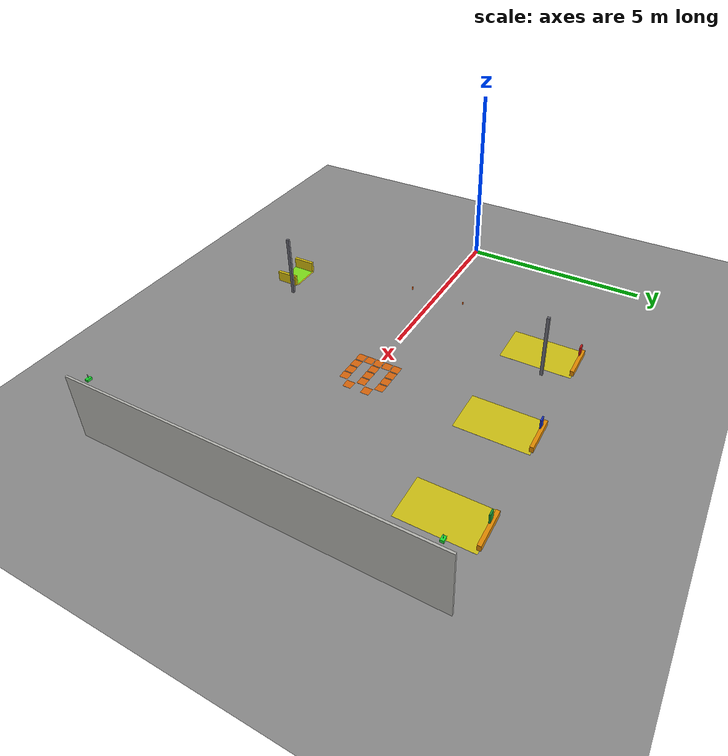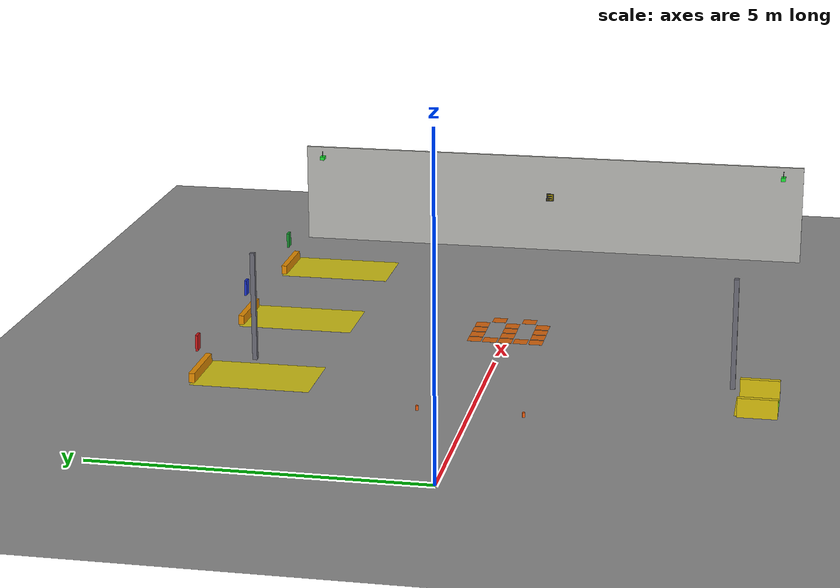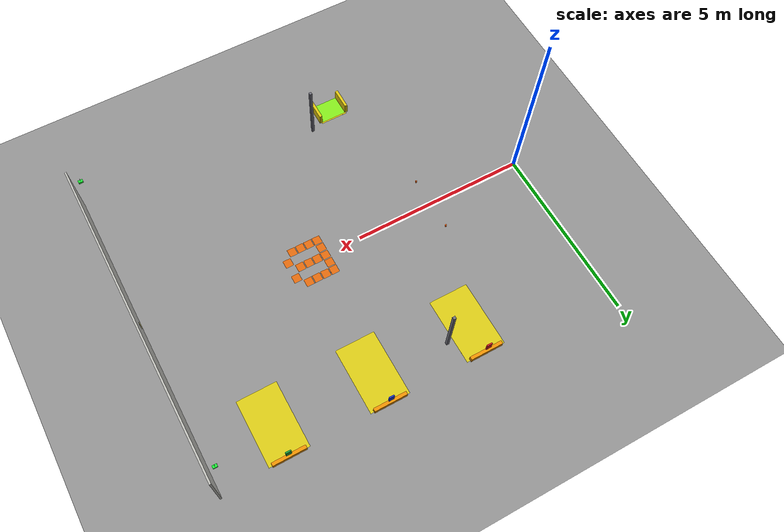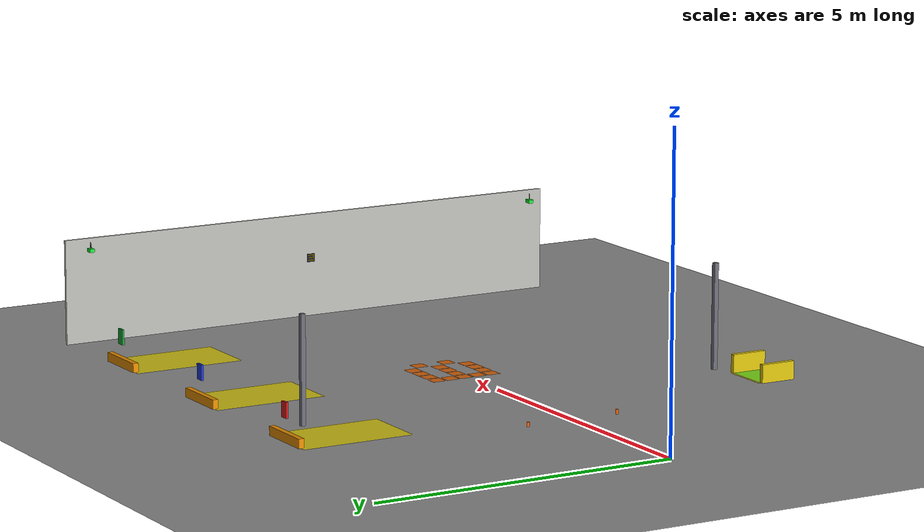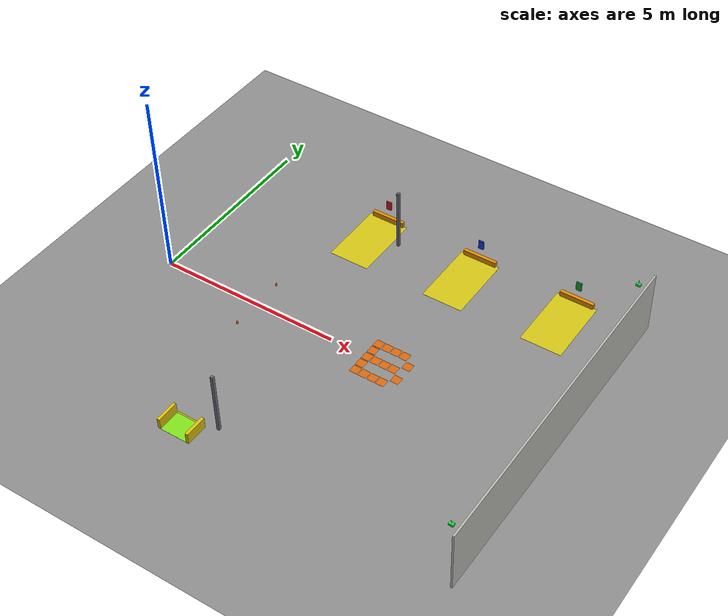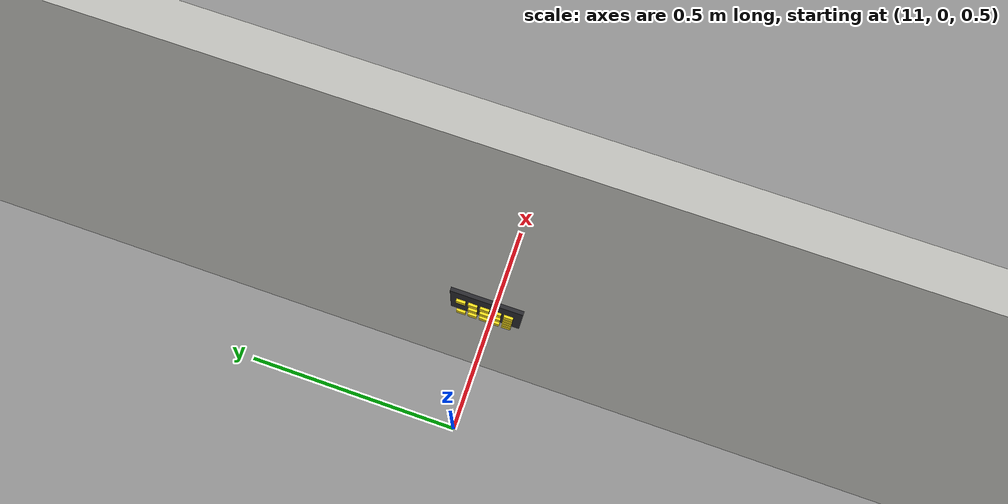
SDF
<sdf version="1.9">
 <world name="industrial_warehouse_large">
  <model name="ground_plane">
   <static>true</static>
   <pose>-0.46875 0 0 0 0 0</pose>
   <link name="link">
    <collision name="col">
     <geometry><plane><normal>0 0 1</normal><size>50 50</size></plane></geometry>
     <surface><friction><ode><mu>1.8</mu><mu2>1.8</mu2></ode></friction></surface>
    </collision>
    <visual name="vis">
     <geometry><plane><normal>0 0 1</normal><size>24.1875 9.5</size></plane></geometry>
     <material><ambient>0.55 0.55 0.55 1</ambient><diffuse>0.55 0.55 0.55 1</diffuse></material>
    </visual>
   </link>
  </model>
  <model name="wall_east">
   <static>true</static>
   <pose>11.25 0 0.875 0 0 0</pose>
   <link name="link">
    <collision name="col"><geometry><box><size>0.05 9.1 1.75</size></box></geometry></collision>
    <visual name="vis">
     <geometry><box><size>0.05 9.1 1.75</size></box></geometry>
     <material><ambient>0.72 0.72 0.70 1</ambient><diffuse>0.72 0.72 0.70 1</diffuse></material>
    </visual>
   </link>
  </model>
  <model name="pillar_9">
   <static>true</static>
   <pose>4.5 3.75 0.875 0 0 0</pose>
   <link name="link">
    <collision name="col"><geometry><box><size>0.075 0.075 1.75</size></box></geometry></collision>
    <visual name="vis">
     <geometry><box><size>0.075 0.075 1.75</size></box></geometry>
     <material><ambient>0.42 0.42 0.46 1</ambient><diffuse>0.42 0.42 0.46 1</diffuse></material>
    </visual>
   </link>
  </model>
  <model name="pillar_10">
   <static>true</static>
   <pose>4.5 -3.75 0.875 0 0 0</pose>
   <link name="link">
    <collision name="col"><geometry><box><size>0.075 0.075 1.75</size></box></geometry></collision>
    <visual name="vis">
     <geometry><box><size>0.075 0.075 1.75</size></box></geometry>
     <material><ambient>0.42 0.42 0.46 1</ambient><diffuse>0.42 0.42 0.46 1</diffuse></material>
    </visual>
   </link>
  </model>
  <model name="dock_bumper_1">
   <static>true</static>
   <pose>3.75 4.425 0.075 0 0 0</pose>
   <link name="link">
    <collision name="col"><geometry><box><size>0.9375 0.09375 0.15</size></box></geometry></collision>
    <visual name="vis">
     <geometry><box><size>0.9375 0.09375 0.15</size></box></geometry>
     <material><ambient>0.9 0.55 0.0 1</ambient><diffuse>0.9 0.55 0.0 1</diffuse></material>
    </visual>
   </link>
  </model>
  <model name="dock_bumper_2">
   <static>true</static>
   <pose>6.5625 4.425 0.075 0 0 0</pose>
   <link name="link">
    <collision name="col"><geometry><box><size>0.9375 0.09375 0.15</size></box></geometry></collision>
    <visual name="vis">
     <geometry><box><size>0.9375 0.09375 0.15</size></box></geometry>
     <material><ambient>0.9 0.55 0.0 1</ambient><diffuse>0.9 0.55 0.0 1</diffuse></material>
    </visual>
   </link>
  </model>
  <model name="dock_bumper_3">
   <static>true</static>
   <pose>9.375 4.425 0.075 0 0 0</pose>
   <link name="link">
    <collision name="col"><geometry><box><size>0.9375 0.09375 0.15</size></box></geometry></collision>
    <visual name="vis">
     <geometry><box><size>0.9375 0.09375 0.15</size></box></geometry>
     <material><ambient>0.9 0.55 0.0 1</ambient><diffuse>0.9 0.55 0.0 1</diffuse></material>
    </visual>
   </link>
  </model>
  <model name="dock_mark_1">
   <static>true</static>
   <pose>3.75 3.5 0.00025 0 0 0</pose>
   <link name="link">
    <visual name="vis">
     <geometry><box><size>1.125 1.875 0.0005</size></box></geometry>
     <material><ambient>0.82 0.76 0.08 1</ambient><diffuse>0.82 0.76 0.08 1</diffuse></material>
    </visual>
   </link>
  </model>
  <model name="dock_mark_2">
   <static>true</static>
   <pose>6.5625 3.5 0.00025 0 0 0</pose>
   <link name="link">
    <visual name="vis">
     <geometry><box><size>1.125 1.875 0.0005</size></box></geometry>
     <material><ambient>0.82 0.76 0.08 1</ambient><diffuse>0.82 0.76 0.08 1</diffuse></material>
    </visual>
   </link>
  </model>
  <model name="dock_mark_3">
   <static>true</static>
   <pose>9.375 3.5 0.00025 0 0 0</pose>
   <link name="link">
    <visual name="vis">
     <geometry><box><size>1.125 1.875 0.0005</size></box></geometry>
     <material><ambient>0.82 0.76 0.08 1</ambient><diffuse>0.82 0.76 0.08 1</diffuse></material>
    </visual>
   </link>
  </model>
  <model name="chrg_wall_w">
   <static>true</static>
   <pose>3.34 -4.175 0.15 0 0 0</pose>
   <link name="link">
    <collision name="col"><geometry><box><size>0.08 0.6 0.3</size></box></geometry></collision>
    <visual name="vis">
     <geometry><box><size>0.08 0.6 0.3</size></box></geometry>
     <material><ambient>0.85 0.75 0.05 1</ambient><diffuse>0.85 0.75 0.05 1</diffuse></material>
    </visual>
   </link>
  </model>
  <model name="chrg_wall_e">
   <static>true</static>
   <pose>4.16 -4.175 0.15 0 0 0</pose>
   <link name="link">
    <collision name="col"><geometry><box><size>0.08 0.6 0.3</size></box></geometry></collision>
    <visual name="vis">
     <geometry><box><size>0.08 0.6 0.3</size></box></geometry>
     <material><ambient>0.85 0.75 0.05 1</ambient><diffuse>0.85 0.75 0.05 1</diffuse></material>
    </visual>
   </link>
  </model>
  <model name="chrg_pad">
   <static>true</static>
   <pose>3.75 -4.175 0.00025 0 0 0</pose>
   <link name="link">
    <visual name="vis">
     <geometry><box><size>0.8 0.6 0.0005</size></box></geometry>
     <material><ambient>0.5 0.88 0.1 1</ambient><diffuse>0.5 0.88 0.1 1</diffuse></material>
    </visual>
   </link>
  </model>
  <model name="chrg_entry_mark">
   <static>true</static>
   <pose>3.75 -3.855 0.00025 0 0 0</pose>
   <link name="link">
    <visual name="vis">
     <geometry><box><size>0.8 0.04 0.0005</size></box></geometry>
     <material><ambient>0.85 0.75 0.05 1</ambient><diffuse>0.85 0.75 0.05 1</diffuse></material>
    </visual>
   </link>
  </model>
  <model name="sign_dock_1">
   <static>true</static>
   <pose>3.75 4.45 0.5 0 0 0</pose>
   <link name="link">
    <collision name="col"><geometry><box><size>0.15 0.0375 0.25</size></box></geometry></collision>
    <visual name="vis">
     <geometry><box><size>0.15 0.0375 0.25</size></box></geometry>
     <material><ambient>0.8 0.1 0.1 1</ambient><diffuse>0.8 0.1 0.1 1</diffuse></material>
    </visual>
   </link>
  </model>
  <model name="sign_dock_2">
   <static>true</static>
   <pose>6.5625 4.45 0.5 0 0 0</pose>
   <link name="link">
    <collision name="col"><geometry><box><size>0.15 0.0375 0.25</size></box></geometry></collision>
    <visual name="vis">
     <geometry><box><size>0.15 0.0375 0.25</size></box></geometry>
     <material><ambient>0.1 0.2 0.8 1</ambient><diffuse>0.1 0.2 0.8 1</diffuse></material>
    </visual>
   </link>
  </model>
  <model name="sign_dock_3">
   <static>true</static>
   <pose>9.375 4.45 0.5 0 0 0</pose>
   <link name="link">
    <collision name="col"><geometry><box><size>0.15 0.0375 0.25</size></box></geometry></collision>
    <visual name="vis">
     <geometry><box><size>0.15 0.0375 0.25</size></box></geometry>
     <material><ambient>0.1 0.6 0.2 1</ambient><diffuse>0.1 0.6 0.2 1</diffuse></material>
    </visual>
   </link>
  </model>
  <model name="compass_east_plate">
   <static>true</static>
   <pose>11.2 0 1 0 0 0</pose>
   <link name="link">
    <collision name="col"><geometry><box><size>0.0075 0.1375 0.1375</size></box></geometry></collision>
    <visual name="vis">
     <geometry><box><size>0.0075 0.1375 0.1375</size></box></geometry>
     <material><ambient>0.15 0.15 0.17 1</ambient><diffuse>0.15 0.15 0.17 1</diffuse></material>
    </visual>
   </link>
  </model>
  <model name="compass_east_px1">
   <static>true</static>
   <pose>11.1875 -0.045 1.045 0 0 0</pose>
   <link name="link">
    <visual name="vis">
     <geometry><box><size>0.005 0.0175 0.0175</size></box></geometry>
     <material><ambient>0.95 0.85 0.1 1</ambient><diffuse>0.95 0.85 0.1 1</diffuse></material>
    </visual>
   </link>
  </model>
  <model name="compass_east_px2">
   <static>true</static>
   <pose>11.1875 -0.0225 1.045 0 0 0</pose>
   <link name="link">
    <visual name="vis">
     <geometry><box><size>0.005 0.0175 0.0175</size></box></geometry>
     <material><ambient>0.95 0.85 0.1 1</ambient><diffuse>0.95 0.85 0.1 1</diffuse></material>
    </visual>
   </link>
  </model>
  <model name="compass_east_px3">
   <static>true</static>
   <pose>11.1875 0 1.045 0 0 0</pose>
   <link name="link">
    <visual name="vis">
     <geometry><box><size>0.005 0.0175 0.0175</size></box></geometry>
     <material><ambient>0.95 0.85 0.1 1</ambient><diffuse>0.95 0.85 0.1 1</diffuse></material>
    </visual>
   </link>
  </model>
  <model name="compass_east_px4">
   <static>true</static>
   <pose>11.1875 0.0225 1.045 0 0 0</pose>
   <link name="link">
    <visual name="vis">
     <geometry><box><size>0.005 0.0175 0.0175</size></box></geometry>
     <material><ambient>0.95 0.85 0.1 1</ambient><diffuse>0.95 0.85 0.1 1</diffuse></material>
    </visual>
   </link>
  </model>
  <model name="compass_east_px5">
   <static>true</static>
   <pose>11.1875 0.045 1.045 0 0 0</pose>
   <link name="link">
    <visual name="vis">
     <geometry><box><size>0.005 0.0175 0.0175</size></box></geometry>
     <material><ambient>0.95 0.85 0.1 1</ambient><diffuse>0.95 0.85 0.1 1</diffuse></material>
    </visual>
   </link>
  </model>
  <model name="compass_east_px6">
   <static>true</static>
   <pose>11.1875 -0.045 1.0225 0 0 0</pose>
   <link name="link">
    <visual name="vis">
     <geometry><box><size>0.005 0.0175 0.0175</size></box></geometry>
     <material><ambient>0.95 0.85 0.1 1</ambient><diffuse>0.95 0.85 0.1 1</diffuse></material>
    </visual>
   </link>
  </model>
  <model name="compass_east_px7">
   <static>true</static>
   <pose>11.1875 -0.045 1 0 0 0</pose>
   <link name="link">
    <visual name="vis">
     <geometry><box><size>0.005 0.0175 0.0175</size></box></geometry>
     <material><ambient>0.95 0.85 0.1 1</ambient><diffuse>0.95 0.85 0.1 1</diffuse></material>
    </visual>
   </link>
  </model>
  <model name="compass_east_px8">
   <static>true</static>
   <pose>11.1875 -0.0225 1 0 0 0</pose>
   <link name="link">
    <visual name="vis">
     <geometry><box><size>0.005 0.0175 0.0175</size></box></geometry>
     <material><ambient>0.95 0.85 0.1 1</ambient><diffuse>0.95 0.85 0.1 1</diffuse></material>
    </visual>
   </link>
  </model>
  <model name="compass_east_px9">
   <static>true</static>
   <pose>11.1875 0 1 0 0 0</pose>
   <link name="link">
    <visual name="vis">
     <geometry><box><size>0.005 0.0175 0.0175</size></box></geometry>
     <material><ambient>0.95 0.85 0.1 1</ambient><diffuse>0.95 0.85 0.1 1</diffuse></material>
    </visual>
   </link>
  </model>
  <model name="compass_east_px10">
   <static>true</static>
   <pose>11.1875 0.0225 1 0 0 0</pose>
   <link name="link">
    <visual name="vis">
     <geometry><box><size>0.005 0.0175 0.0175</size></box></geometry>
     <material><ambient>0.95 0.85 0.1 1</ambient><diffuse>0.95 0.85 0.1 1</diffuse></material>
    </visual>
   </link>
  </model>
  <model name="compass_east_px11">
   <static>true</static>
   <pose>11.1875 -0.045 0.9775 0 0 0</pose>
   <link name="link">
    <visual name="vis">
     <geometry><box><size>0.005 0.0175 0.0175</size></box></geometry>
     <material><ambient>0.95 0.85 0.1 1</ambient><diffuse>0.95 0.85 0.1 1</diffuse></material>
    </visual>
   </link>
  </model>
  <model name="compass_east_px12">
   <static>true</static>
   <pose>11.1875 -0.045 0.955 0 0 0</pose>
   <link name="link">
    <visual name="vis">
     <geometry><box><size>0.005 0.0175 0.0175</size></box></geometry>
     <material><ambient>0.95 0.85 0.1 1</ambient><diffuse>0.95 0.85 0.1 1</diffuse></material>
    </visual>
   </link>
  </model>
  <model name="compass_east_px13">
   <static>true</static>
   <pose>11.1875 -0.0225 0.955 0 0 0</pose>
   <link name="link">
    <visual name="vis">
     <geometry><box><size>0.005 0.0175 0.0175</size></box></geometry>
     <material><ambient>0.95 0.85 0.1 1</ambient><diffuse>0.95 0.85 0.1 1</diffuse></material>
    </visual>
   </link>
  </model>
  <model name="compass_east_px14">
   <static>true</static>
   <pose>11.1875 0 0.955 0 0 0</pose>
   <link name="link">
    <visual name="vis">
     <geometry><box><size>0.005 0.0175 0.0175</size></box></geometry>
     <material><ambient>0.95 0.85 0.1 1</ambient><diffuse>0.95 0.85 0.1 1</diffuse></material>
    </visual>
   </link>
  </model>
  <model name="compass_east_px15">
   <static>true</static>
   <pose>11.1875 0.0225 0.955 0 0 0</pose>
   <link name="link">
    <visual name="vis">
     <geometry><box><size>0.005 0.0175 0.0175</size></box></geometry>
     <material><ambient>0.95 0.85 0.1 1</ambient><diffuse>0.95 0.85 0.1 1</diffuse></material>
    </visual>
   </link>
  </model>
  <model name="compass_east_px16">
   <static>true</static>
   <pose>11.1875 0.045 0.955 0 0 0</pose>
   <link name="link">
    <visual name="vis">
     <geometry><box><size>0.005 0.0175 0.0175</size></box></geometry>
     <material><ambient>0.95 0.85 0.1 1</ambient><diffuse>0.95 0.85 0.1 1</diffuse></material>
    </visual>
   </link>
  </model>
  <model name="room_label_B_px1">
   <static>true</static>
   <pose>6.0625 0.5 0.00025 0 0 0</pose>
   <link name="link">
    <visual name="vis">
     <geometry><box><size>0.225 0.225 0.0005</size></box></geometry>
     <material><ambient>0.85 0.4 0.05 1</ambient><diffuse>0.85 0.4 0.05 1</diffuse></material>
    </visual>
   </link>
  </model>
  <model name="room_label_B_px2">
   <static>true</static>
   <pose>6.3125 0.5 0.00025 0 0 0</pose>
   <link name="link">
    <visual name="vis">
     <geometry><box><size>0.225 0.225 0.0005</size></box></geometry>
     <material><ambient>0.85 0.4 0.05 1</ambient><diffuse>0.85 0.4 0.05 1</diffuse></material>
    </visual>
   </link>
  </model>
  <model name="room_label_B_px3">
   <static>true</static>
   <pose>6.5625 0.5 0.00025 0 0 0</pose>
   <link name="link">
    <visual name="vis">
     <geometry><box><size>0.225 0.225 0.0005</size></box></geometry>
     <material><ambient>0.85 0.4 0.05 1</ambient><diffuse>0.85 0.4 0.05 1</diffuse></material>
    </visual>
   </link>
  </model>
  <model name="room_label_B_px4">
   <static>true</static>
   <pose>6.8125 0.5 0.00025 0 0 0</pose>
   <link name="link">
    <visual name="vis">
     <geometry><box><size>0.225 0.225 0.0005</size></box></geometry>
     <material><ambient>0.85 0.4 0.05 1</ambient><diffuse>0.85 0.4 0.05 1</diffuse></material>
    </visual>
   </link>
  </model>
  <model name="room_label_B_px5">
   <static>true</static>
   <pose>6.0625 0.25 0.00025 0 0 0</pose>
   <link name="link">
    <visual name="vis">
     <geometry><box><size>0.225 0.225 0.0005</size></box></geometry>
     <material><ambient>0.85 0.4 0.05 1</ambient><diffuse>0.85 0.4 0.05 1</diffuse></material>
    </visual>
   </link>
  </model>
  <model name="room_label_B_px6">
   <static>true</static>
   <pose>7.0625 0.25 0.00025 0 0 0</pose>
   <link name="link">
    <visual name="vis">
     <geometry><box><size>0.225 0.225 0.0005</size></box></geometry>
     <material><ambient>0.85 0.4 0.05 1</ambient><diffuse>0.85 0.4 0.05 1</diffuse></material>
    </visual>
   </link>
  </model>
  <model name="room_label_B_px7">
   <static>true</static>
   <pose>6.0625 0 0.00025 0 0 0</pose>
   <link name="link">
    <visual name="vis">
     <geometry><box><size>0.225 0.225 0.0005</size></box></geometry>
     <material><ambient>0.85 0.4 0.05 1</ambient><diffuse>0.85 0.4 0.05 1</diffuse></material>
    </visual>
   </link>
  </model>
  <model name="room_label_B_px8">
   <static>true</static>
   <pose>6.3125 0 0.00025 0 0 0</pose>
   <link name="link">
    <visual name="vis">
     <geometry><box><size>0.225 0.225 0.0005</size></box></geometry>
     <material><ambient>0.85 0.4 0.05 1</ambient><diffuse>0.85 0.4 0.05 1</diffuse></material>
    </visual>
   </link>
  </model>
  <model name="room_label_B_px9">
   <static>true</static>
   <pose>6.5625 0 0.00025 0 0 0</pose>
   <link name="link">
    <visual name="vis">
     <geometry><box><size>0.225 0.225 0.0005</size></box></geometry>
     <material><ambient>0.85 0.4 0.05 1</ambient><diffuse>0.85 0.4 0.05 1</diffuse></material>
    </visual>
   </link>
  </model>
  <model name="room_label_B_px10">
   <static>true</static>
   <pose>6.8125 0 0.00025 0 0 0</pose>
   <link name="link">
    <visual name="vis">
     <geometry><box><size>0.225 0.225 0.0005</size></box></geometry>
     <material><ambient>0.85 0.4 0.05 1</ambient><diffuse>0.85 0.4 0.05 1</diffuse></material>
    </visual>
   </link>
  </model>
  <model name="room_label_B_px11">
   <static>true</static>
   <pose>6.0625 -0.25 0.00025 0 0 0</pose>
   <link name="link">
    <visual name="vis">
     <geometry><box><size>0.225 0.225 0.0005</size></box></geometry>
     <material><ambient>0.85 0.4 0.05 1</ambient><diffuse>0.85 0.4 0.05 1</diffuse></material>
    </visual>
   </link>
  </model>
  <model name="room_label_B_px12">
   <static>true</static>
   <pose>7.0625 -0.25 0.00025 0 0 0</pose>
   <link name="link">
    <visual name="vis">
     <geometry><box><size>0.225 0.225 0.0005</size></box></geometry>
     <material><ambient>0.85 0.4 0.05 1</ambient><diffuse>0.85 0.4 0.05 1</diffuse></material>
    </visual>
   </link>
  </model>
  <model name="room_label_B_px13">
   <static>true</static>
   <pose>6.0625 -0.5 0.00025 0 0 0</pose>
   <link name="link">
    <visual name="vis">
     <geometry><box><size>0.225 0.225 0.0005</size></box></geometry>
     <material><ambient>0.85 0.4 0.05 1</ambient><diffuse>0.85 0.4 0.05 1</diffuse></material>
    </visual>
   </link>
  </model>
  <model name="room_label_B_px14">
   <static>true</static>
   <pose>6.3125 -0.5 0.00025 0 0 0</pose>
   <link name="link">
    <visual name="vis">
     <geometry><box><size>0.225 0.225 0.0005</size></box></geometry>
     <material><ambient>0.85 0.4 0.05 1</ambient><diffuse>0.85 0.4 0.05 1</diffuse></material>
    </visual>
   </link>
  </model>
  <model name="room_label_B_px15">
   <static>true</static>
   <pose>6.5625 -0.5 0.00025 0 0 0</pose>
   <link name="link">
    <visual name="vis">
     <geometry><box><size>0.225 0.225 0.0005</size></box></geometry>
     <material><ambient>0.85 0.4 0.05 1</ambient><diffuse>0.85 0.4 0.05 1</diffuse></material>
    </visual>
   </link>
  </model>
  <model name="room_label_B_px16">
   <static>true</static>
   <pose>6.8125 -0.5 0.00025 0 0 0</pose>
   <link name="link">
    <visual name="vis">
     <geometry><box><size>0.225 0.225 0.0005</size></box></geometry>
     <material><ambient>0.85 0.4 0.05 1</ambient><diffuse>0.85 0.4 0.05 1</diffuse></material>
    </visual>
   </link>
  </model>
  <model name="safety_cone_3">
   <static>true</static>
   <pose>2.75 0.8 0.0375 0 0 0</pose>
   <link name="link">
    <collision name="col">
     <geometry><cylinder><radius>0.0225</radius><length>0.075</length></cylinder></geometry>
    </collision>
    <visual name="vis">
     <geometry><cylinder><radius>0.0225</radius><length>0.075</length></cylinder></geometry>
     <material><ambient>0.9 0.35 0.05 1</ambient><diffuse>0.9 0.35 0.05 1</diffuse></material>
    </visual>
   </link>
  </model>
  <model name="safety_cone_4">
   <static>true</static>
   <pose>2.75 -0.8 0.0375 0 0 0</pose>
   <link name="link">
    <collision name="col">
     <geometry><cylinder><radius>0.0225</radius><length>0.075</length></cylinder></geometry>
    </collision>
    <visual name="vis">
     <geometry><cylinder><radius>0.0225</radius><length>0.075</length></cylinder></geometry>
     <material><ambient>0.9 0.35 0.05 1</ambient><diffuse>0.9 0.35 0.05 1</diffuse></material>
    </visual>
   </link>
  </model>
  <model name="uwb_anchor_4">
   <static>true</static>
   <pose>11.0 4.2 1.6 0 0 0</pose>
   <link name="link">
    <visual name="box">
     <geometry><box><size>0.12 0.08 0.06</size></box></geometry>
     <material>
      <ambient>0.1 0.9 0.2 1</ambient>
      <diffuse>0.1 0.9 0.2 1</diffuse>
      <emissive>0.05 0.4 0.1 1</emissive>
     </material>
    </visual>
    <visual name="ant">
     <pose>0 0 0.08 0 0 0</pose>
     <geometry><cylinder><radius>0.006</radius><length>0.1</length></cylinder></geometry>
     <material><ambient>0.15 0.15 0.15 1</ambient><diffuse>0.15 0.15 0.15 1</diffuse></material>
    </visual>
   </link>
  </model>
  <model name="uwb_anchor_5">
   <static>true</static>
   <pose>11.0 -4.2 1.6 0 0 0</pose>
   <link name="link">
    <visual name="box">
     <geometry><box><size>0.12 0.08 0.06</size></box></geometry>
     <material>
      <ambient>0.1 0.9 0.2 1</ambient>
      <diffuse>0.1 0.9 0.2 1</diffuse>
      <emissive>0.05 0.4 0.1 1</emissive>
     </material>
    </visual>
    <visual name="ant">
     <pose>0 0 0.08 0 0 0</pose>
     <geometry><cylinder><radius>0.006</radius><length>0.1</length></cylinder></geometry>
     <material><ambient>0.15 0.15 0.15 1</ambient><diffuse>0.15 0.15 0.15 1</diffuse></material>
    </visual>
   </link>
  </model>
 </world>
</sdf>
